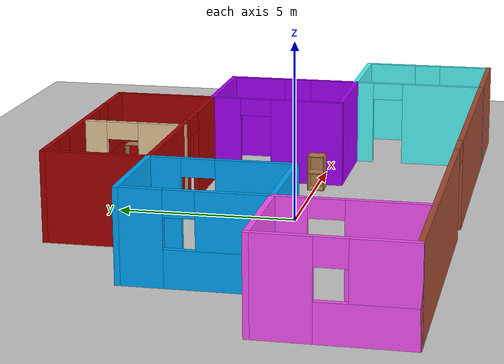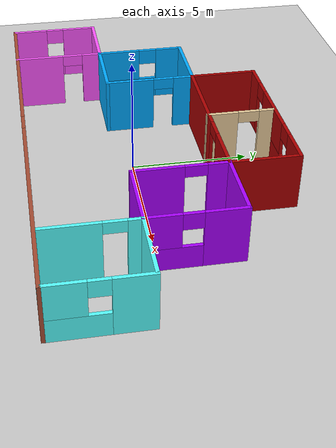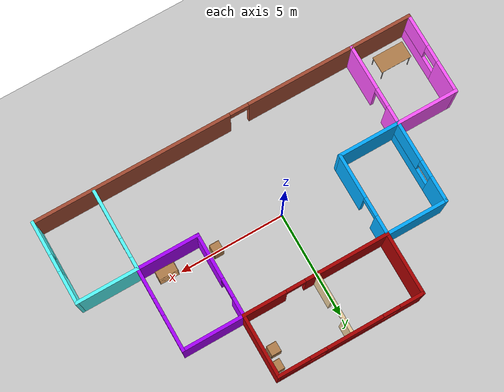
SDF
<sdf version="1.6">
 <world name="default">
  <light name="sun" type="directional">
   <pose>0 0 10 0 -0 0</pose>
   <diffuse>0.8 0.8 0.8 1</diffuse>
   <specular>0.2 0.2 0.2 1</specular>
   <attenuation>
    <range>1000</range>
    <constant>0.9</constant>
    <linear>0.01</linear>
    <quadratic>0.001</quadratic>
   </attenuation>
   <direction>-0.5 0.1 -0.9</direction>
  </light>
  <model name="ground_plane">
   <static>1</static>
   <link name="link">
    <collision name="collision">
     <geometry><plane><normal>0 0 1</normal><size>100 100</size></plane></geometry>
     <surface><friction><ode><mu>100</mu><mu2>50</mu2></ode></friction></surface>
    </collision>
    <visual name="visual">
     <cast_shadows>0</cast_shadows>
     <geometry><plane><normal>0 0 1</normal><size>100 100</size></plane></geometry>
     <material>
      <script><uri>file://media/materials/scripts/gazebo.material</uri><name>Gazebo/Grey</name></script>
     </material>
    </visual>
   </link>
  </model>
  <gravity>0 0 -9.8</gravity>
  <magnetic_field>6e-06 2.3e-05 -4.2e-05</magnetic_field>
  <atmosphere type="adiabatic"/>
  <physics name="default_physics" default="0" type="ode">
   <max_step_size>0.001</max_step_size>
   <real_time_factor>1</real_time_factor>
   <real_time_update_rate>1000</real_time_update_rate>
  </physics>
  <scene><ambient>0.4 0.4 0.4 1</ambient><background>0.7 0.7 0.7 1</background><shadows>1</shadows></scene>
  <audio><device>default</device></audio>
  <spherical_coordinates>
   <surface_model>EARTH_WGS84</surface_model>
   <latitude_deg>0</latitude_deg>
   <longitude_deg>0</longitude_deg>
   <elevation>0</elevation>
   <heading_deg>0</heading_deg>
  </spherical_coordinates>
  <model name="myworld">
   <pose>0.312339 0.78829 0 0 -0 0</pose>
   <link name="Wall_0">
    <pose>0 5.27494 0 0 0 -4e-05</pose>
    <visual name="Wall_0_Visual_0">
     <pose>-2.9108 0 1.25 0 -0 0</pose>
     <geometry><box><size>1.1784 0.15 2.5</size></box></geometry>
     <material>
      <script><uri>file://media/materials/scripts/gazebo.material</uri><name>Gazebo/Grey</name></script>
      <ambient>0.666667 0 0 1</ambient>
     </material>
     <meta><layer>0</layer></meta>
    </visual>
    <collision name="Wall_0_Collision_0">
     <geometry><box><size>1.1784 0.15 2.5</size></box></geometry>
     <pose>-2.9108 0 1.25 0 -0 0</pose>
    </collision>
    <visual name="Wall_0_Visual_1">
     <pose>0.5892 0 0.5 0 -0 0</pose>
     <geometry><box><size>5.8216 0.15 1</size></box></geometry>
     <material>
      <script><uri>file://media/materials/scripts/gazebo.material</uri><name>Gazebo/Grey</name></script>
      <ambient>0.666667 0 0 1</ambient>
     </material>
     <meta><layer>0</layer></meta>
    </visual>
    <collision name="Wall_0_Collision_1">
     <geometry><box><size>5.8216 0.15 1</size></box></geometry>
     <pose>0.5892 0 0.5 0 -0 0</pose>
    </collision>
    <visual name="Wall_0_Visual_2">
     <pose>-0.189125 0 1.75 0 -0 0</pose>
     <geometry><box><size>2.66495 0.15 1.5</size></box></geometry>
     <material>
      <script><uri>file://media/materials/scripts/gazebo.material</uri><name>Gazebo/Grey</name></script>
      <ambient>0.666667 0 0 1</ambient>
     </material>
     <meta><layer>0</layer></meta>
    </visual>
    <collision name="Wall_0_Collision_2">
     <geometry><box><size>2.66495 0.15 1.5</size></box></geometry>
     <pose>-0.189125 0 1.75 0 -0 0</pose>
    </collision>
    <visual name="Wall_0_Visual_3">
     <pose>2.72167 0 1.75 0 -0 0</pose>
     <geometry><box><size>1.55665 0.15 1.5</size></box></geometry>
     <material>
      <script><uri>file://media/materials/scripts/gazebo.material</uri><name>Gazebo/Grey</name></script>
      <ambient>0.666667 0 0 1</ambient>
     </material>
     <meta><layer>0</layer></meta>
    </visual>
    <collision name="Wall_0_Collision_3">
     <geometry><box><size>1.55665 0.15 1.5</size></box></geometry>
     <pose>2.72167 0 1.75 0 -0 0</pose>
    </collision>
    <visual name="Wall_0_Visual_4">
     <pose>-1.9216 0 2.15 0 -0 0</pose>
     <geometry><box><size>0.8 0.15 0.7</size></box></geometry>
     <material>
      <script><uri>file://media/materials/scripts/gazebo.material</uri><name>Gazebo/Grey</name></script>
      <ambient>0.666667 0 0 1</ambient>
     </material>
     <meta><layer>0</layer></meta>
    </visual>
    <collision name="Wall_0_Collision_4">
     <geometry><box><size>0.8 0.15 0.7</size></box></geometry>
     <pose>-1.9216 0 2.15 0 -0 0</pose>
    </collision>
    <visual name="Wall_0_Visual_5">
     <pose>1.54335 0 2.15 0 -0 0</pose>
     <geometry><box><size>0.8 0.15 0.7</size></box></geometry>
     <material>
      <script><uri>file://media/materials/scripts/gazebo.material</uri><name>Gazebo/Grey</name></script>
      <ambient>0.666667 0 0 1</ambient>
     </material>
     <meta><layer>0</layer></meta>
    </visual>
    <collision name="Wall_0_Collision_5">
     <geometry><box><size>0.8 0.15 0.7</size></box></geometry>
     <pose>1.54335 0 2.15 0 -0 0</pose>
    </collision>
   </link>
   <link name="Wall_11">
    <collision name="Wall_11_Collision">
     <geometry><box><size>3 0.15 2.5</size></box></geometry>
     <pose>0 0 1.25 0 -0 0</pose>
    </collision>
    <visual name="Wall_11_Visual">
     <pose>0 0 1.25 0 -0 0</pose>
     <geometry><box><size>3 0.15 2.5</size></box></geometry>
     <material>
      <script><uri>file://media/materials/scripts/gazebo.material</uri><name>Gazebo/Grey</name></script>
      <ambient>0.666667 0 0 1</ambient>
     </material>
     <meta><layer>0</layer></meta>
    </visual>
    <pose>-3.425 3.85019 0 0 0 -1.5708</pose>
   </link>
   <link name="Wall_12">
    <collision name="Wall_12_Collision">
     <geometry><box><size>3 0.15 2.5</size></box></geometry>
     <pose>0 0 1.25 0 -0 0</pose>
    </collision>
    <visual name="Wall_12_Visual">
     <pose>0 0 1.25 0 -0 0</pose>
     <geometry><box><size>3 0.15 2.5</size></box></geometry>
     <material>
      <script><uri>file://media/materials/scripts/gazebo.material</uri><name>Gazebo/Grey</name></script>
      <ambient>0 0.666667 1 1</ambient>
     </material>
     <meta><layer>0</layer></meta>
    </visual>
    <pose>-4.85 2.42531 0 0 -0 3.14159</pose>
   </link>
   <link name="Wall_13">
    <pose>-6.275 0.50031 0 0 0 -1.5708</pose>
    <visual name="Wall_13_Visual_0">
     <pose>-1.37784 0 1.25 0 -0 0</pose>
     <geometry><box><size>1.24431 0.15 2.5</size></box></geometry>
     <material>
      <script><uri>file://media/materials/scripts/gazebo.material</uri><name>Gazebo/Grey</name></script>
      <ambient>0 0.666667 1 1</ambient>
     </material>
     <meta><layer>0</layer></meta>
    </visual>
    <collision name="Wall_13_Collision_0">
     <geometry><box><size>1.24431 0.15 2.5</size></box></geometry>
     <pose>-1.37784 0 1.25 0 -0 0</pose>
    </collision>
    <visual name="Wall_13_Visual_1">
     <pose>0.622157 0 0.5 0 -0 0</pose>
     <geometry><box><size>2.75569 0.15 1</size></box></geometry>
     <material>
      <script><uri>file://media/materials/scripts/gazebo.material</uri><name>Gazebo/Grey</name></script>
      <ambient>0 0.666667 1 1</ambient>
     </material>
     <meta><layer>0</layer></meta>
    </visual>
    <collision name="Wall_13_Collision_1">
     <geometry><box><size>2.75569 0.15 1</size></box></geometry>
     <pose>0.622157 0 0.5 0 -0 0</pose>
    </collision>
    <visual name="Wall_13_Visual_2">
     <pose>1.02216 0 1.75 0 -0 0</pose>
     <geometry><box><size>1.95569 0.15 1.5</size></box></geometry>
     <material>
      <script><uri>file://media/materials/scripts/gazebo.material</uri><name>Gazebo/Grey</name></script>
      <ambient>0 0.666667 1 1</ambient>
     </material>
     <meta><layer>0</layer></meta>
    </visual>
    <collision name="Wall_13_Collision_2">
     <geometry><box><size>1.95569 0.15 1.5</size></box></geometry>
     <pose>1.02216 0 1.75 0 -0 0</pose>
    </collision>
    <visual name="Wall_13_Visual_3">
     <pose>-0.355686 0 2.15 0 -0 0</pose>
     <geometry><box><size>0.8 0.15 0.7</size></box></geometry>
     <material>
      <script><uri>file://media/materials/scripts/gazebo.material</uri><name>Gazebo/Grey</name></script>
      <ambient>0 0.666667 1 1</ambient>
     </material>
     <meta><layer>0</layer></meta>
    </visual>
    <collision name="Wall_13_Collision_3">
     <geometry><box><size>0.8 0.15 0.7</size></box></geometry>
     <pose>-0.355686 0 2.15 0 -0 0</pose>
    </collision>
   </link>
   <link name="Wall_14">
    <collision name="Wall_14_Collision">
     <geometry><box><size>3 0.15 2.5</size></box></geometry>
     <pose>0 0 1.25 0 -0 0</pose>
    </collision>
    <visual name="Wall_14_Visual">
     <pose>0 0 1.25 0 -0 0</pose>
     <geometry><box><size>3 0.15 2.5</size></box></geometry>
     <material>
      <script><uri>file://media/materials/scripts/gazebo.material</uri><name>Gazebo/Grey</name></script>
      <ambient>1 0.333333 1 1</ambient>
     </material>
     <meta><layer>0</layer></meta>
    </visual>
    <pose>-7.7 -1.42469 0 0 -0 3.14159</pose>
   </link>
   <link name="Wall_15">
    <pose>-9.125 -3.34969 0 0 0 -1.5708</pose>
    <visual name="Wall_15_Visual_0">
     <pose>-1.2126 0 1.25 0 -0 0</pose>
     <geometry><box><size>1.57481 0.15 2.5</size></box></geometry>
     <material>
      <script><uri>file://media/materials/scripts/gazebo.material</uri><name>Gazebo/Grey</name></script>
      <ambient>1 0.333333 1 1</ambient>
     </material>
     <meta><layer>0</layer></meta>
    </visual>
    <collision name="Wall_15_Collision_0">
     <geometry><box><size>1.57481 0.15 2.5</size></box></geometry>
     <pose>-1.2126 0 1.25 0 -0 0</pose>
    </collision>
    <visual name="Wall_15_Visual_1">
     <pose>0.787403 0 0.5 0 -0 0</pose>
     <geometry><box><size>2.42519 0.15 1</size></box></geometry>
     <material>
      <script><uri>file://media/materials/scripts/gazebo.material</uri><name>Gazebo/Grey</name></script>
      <ambient>1 0.333333 1 1</ambient>
     </material>
     <meta><layer>0</layer></meta>
    </visual>
    <collision name="Wall_15_Collision_1">
     <geometry><box><size>2.42519 0.15 1</size></box></geometry>
     <pose>0.787403 0 0.5 0 -0 0</pose>
    </collision>
    <visual name="Wall_15_Visual_2">
     <pose>1.1874 0 1.75 0 -0 0</pose>
     <geometry><box><size>1.62519 0.15 1.5</size></box></geometry>
     <material>
      <script><uri>file://media/materials/scripts/gazebo.material</uri><name>Gazebo/Grey</name></script>
      <ambient>1 0.333333 1 1</ambient>
     </material>
     <meta><layer>0</layer></meta>
    </visual>
    <collision name="Wall_15_Collision_2">
     <geometry><box><size>1.62519 0.15 1.5</size></box></geometry>
     <pose>1.1874 0 1.75 0 -0 0</pose>
    </collision>
    <visual name="Wall_15_Visual_3">
     <pose>-0.025194 0 2.15 0 -0 0</pose>
     <geometry><box><size>0.8 0.15 0.7</size></box></geometry>
     <material>
      <script><uri>file://media/materials/scripts/gazebo.material</uri><name>Gazebo/Grey</name></script>
      <ambient>1 0.333333 1 1</ambient>
     </material>
     <meta><layer>0</layer></meta>
    </visual>
    <collision name="Wall_15_Collision_3">
     <geometry><box><size>0.8 0.15 0.7</size></box></geometry>
     <pose>-0.025194 0 2.15 0 -0 0</pose>
    </collision>
   </link>
   <link name="Wall_17">
    <pose>0 -5.27494 0 0 0 -2.8e-05</pose>
    <visual name="Wall_17_Visual_0">
     <pose>-5.1917 0 1.25 0 -0 0</pose>
     <geometry><box><size>8.01661 0.15 2.5</size></box></geometry>
     <material>
      <script><uri>file://media/materials/scripts/gazebo.material</uri><name>Gazebo/Bricks</name></script>
      <ambient>1 1 1 1</ambient>
     </material>
     <meta><layer>0</layer></meta>
    </visual>
    <collision name="Wall_17_Collision_0">
     <geometry><box><size>8.01661 0.15 2.5</size></box></geometry>
     <pose>-5.1917 0 1.25 0 -0 0</pose>
    </collision>
    <visual name="Wall_17_Visual_1">
     <pose>4.4583 0 1.25 0 -0 0</pose>
     <geometry><box><size>9.48339 0.15 2.5</size></box></geometry>
     <material>
      <script><uri>file://media/materials/scripts/gazebo.material</uri><name>Gazebo/Bricks</name></script>
      <ambient>1 1 1 1</ambient>
     </material>
     <meta><layer>0</layer></meta>
    </visual>
    <collision name="Wall_17_Collision_1">
     <geometry><box><size>9.48339 0.15 2.5</size></box></geometry>
     <pose>4.4583 0 1.25 0 -0 0</pose>
    </collision>
    <visual name="Wall_17_Visual_2">
     <pose>-0.733394 0 2.25 0 -0 0</pose>
     <geometry><box><size>0.9 0.15 0.5</size></box></geometry>
     <material>
      <script><uri>file://media/materials/scripts/gazebo.material</uri><name>Gazebo/Bricks</name></script>
      <ambient>1 1 1 1</ambient>
     </material>
     <meta><layer>0</layer></meta>
    </visual>
    <collision name="Wall_17_Collision_2">
     <geometry><box><size>0.9 0.15 0.5</size></box></geometry>
     <pose>-0.733394 0 2.25 0 -0 0</pose>
    </collision>
   </link>
   <link name="Wall_19">
    <pose>0 2.42506 0 0 0 -7.4e-05</pose>
    <visual name="Wall_19_Visual_0">
     <pose>-1.49428 0 1.25 0 -0 0</pose>
     <geometry><box><size>4.01145 0.15 2.5</size></box></geometry>
     <material>
      <script><uri>file://media/materials/scripts/gazebo.material</uri><name>Gazebo/Grey</name></script>
      <ambient>0.666667 0 0 1</ambient>
     </material>
     <meta><layer>0</layer></meta>
    </visual>
    <collision name="Wall_19_Collision_0">
     <geometry><box><size>4.01145 0.15 2.5</size></box></geometry>
     <pose>-1.49428 0 1.25 0 -0 0</pose>
    </collision>
    <visual name="Wall_19_Visual_1">
     <pose>2.45573 0 1.25 0 -0 0</pose>
     <geometry><box><size>2.08855 0.15 2.5</size></box></geometry>
     <material>
      <script><uri>file://media/materials/scripts/gazebo.material</uri><name>Gazebo/Grey</name></script>
      <ambient>0.666667 0 0 1</ambient>
     </material>
     <meta><layer>0</layer></meta>
    </visual>
    <collision name="Wall_19_Collision_1">
     <geometry><box><size>2.08855 0.15 2.5</size></box></geometry>
     <pose>2.45573 0 1.25 0 -0 0</pose>
    </collision>
    <visual name="Wall_19_Visual_2">
     <pose>0.96145 0 2.25 0 -0 0</pose>
     <geometry><box><size>0.9 0.15 0.5</size></box></geometry>
     <material>
      <script><uri>file://media/materials/scripts/gazebo.material</uri><name>Gazebo/Grey</name></script>
      <ambient>0.666667 0 0 1</ambient>
     </material>
     <meta><layer>0</layer></meta>
    </visual>
    <collision name="Wall_19_Collision_2">
     <geometry><box><size>0.9 0.15 0.5</size></box></geometry>
     <pose>0.96145 0 2.25 0 -0 0</pose>
    </collision>
   </link>
   <link name="Wall_2">
    <collision name="Wall_2_Collision">
     <geometry><box><size>3 0.15 2.5</size></box></geometry>
     <pose>0 0 1.25 0 -0 0</pose>
    </collision>
    <visual name="Wall_2_Visual">
     <pose>0 0 1.25 0 -0 0</pose>
     <geometry><box><size>3 0.15 2.5</size></box></geometry>
     <material>
      <script><uri>file://media/materials/scripts/gazebo.material</uri><name>Gazebo/Grey</name></script>
      <ambient>0.666667 0 0 1</ambient>
     </material>
     <meta><layer>0</layer></meta>
    </visual>
    <pose>3.425 3.84981 0 0 0 -1.5708</pose>
   </link>
   <link name="Wall_20">
    <pose>3.425 0.499806 0 0 0 -1.5708</pose>
    <visual name="Wall_20_Visual_0">
     <pose>-1.5279 0 1.25 0 -0 0</pose>
     <geometry><box><size>0.944199 0.15 2.5</size></box></geometry>
     <material>
      <script><uri>file://media/materials/scripts/gazebo.material</uri><name>Gazebo/Grey</name></script>
      <ambient>0.666667 0 1 1</ambient>
     </material>
     <meta><layer>0</layer></meta>
    </visual>
    <collision name="Wall_20_Collision_0">
     <geometry><box><size>0.944199 0.15 2.5</size></box></geometry>
     <pose>-1.5279 0 1.25 0 -0 0</pose>
    </collision>
    <visual name="Wall_20_Visual_1">
     <pose>0.9221 0 1.25 0 -0 0</pose>
     <geometry><box><size>2.1558 0.15 2.5</size></box></geometry>
     <material>
      <script><uri>file://media/materials/scripts/gazebo.material</uri><name>Gazebo/Grey</name></script>
      <ambient>0.666667 0 1 1</ambient>
     </material>
     <meta><layer>0</layer></meta>
    </visual>
    <collision name="Wall_20_Collision_1">
     <geometry><box><size>2.1558 0.15 2.5</size></box></geometry>
     <pose>0.9221 0 1.25 0 -0 0</pose>
    </collision>
    <visual name="Wall_20_Visual_2">
     <pose>-0.605801 0 2.25 0 -0 0</pose>
     <geometry><box><size>0.9 0.15 0.5</size></box></geometry>
     <material>
      <script><uri>file://media/materials/scripts/gazebo.material</uri><name>Gazebo/Grey</name></script>
      <ambient>0.666667 0 1 1</ambient>
     </material>
     <meta><layer>0</layer></meta>
    </visual>
    <collision name="Wall_20_Collision_2">
     <geometry><box><size>0.9 0.15 0.5</size></box></geometry>
     <pose>-0.605801 0 2.25 0 -0 0</pose>
    </collision>
   </link>
   <link name="Wall_21">
    <collision name="Wall_21_Collision">
     <geometry><box><size>3 0.15 2.5</size></box></geometry>
     <pose>0 0 1.25 0 -0 0</pose>
    </collision>
    <visual name="Wall_21_Visual">
     <pose>0 0 1.25 0 -0 0</pose>
     <geometry><box><size>3 0.15 2.5</size></box></geometry>
     <material>
      <script><uri>file://media/materials/scripts/gazebo.material</uri><name>Gazebo/Grey</name></script>
      <ambient>0.666667 0 1 1</ambient>
     </material>
     <meta><layer>0</layer></meta>
    </visual>
    <pose>4.85 -1.42519 0 0 -0 0</pose>
   </link>
   <link name="Wall_22">
    <pose>6.275 -3.35019 0 0 0 -1.5708</pose>
    <visual name="Wall_22_Visual_0">
     <pose>-1.68423 0 1.25 0 -0 0</pose>
     <geometry><box><size>0.631539 0.15 2.5</size></box></geometry>
     <material>
      <script><uri>file://media/materials/scripts/gazebo.material</uri><name>Gazebo/Grey</name></script>
      <ambient>0.333333 1 1 1</ambient>
     </material>
     <meta><layer>0</layer></meta>
    </visual>
    <collision name="Wall_22_Collision_0">
     <geometry><box><size>0.631539 0.15 2.5</size></box></geometry>
     <pose>-1.68423 0 1.25 0 -0 0</pose>
    </collision>
    <visual name="Wall_22_Visual_1">
     <pose>0.76577 0 1.25 0 -0 0</pose>
     <geometry><box><size>2.46846 0.15 2.5</size></box></geometry>
     <material>
      <script><uri>file://media/materials/scripts/gazebo.material</uri><name>Gazebo/Grey</name></script>
      <ambient>0.333333 1 1 1</ambient>
     </material>
     <meta><layer>0</layer></meta>
    </visual>
    <collision name="Wall_22_Collision_1">
     <geometry><box><size>2.46846 0.15 2.5</size></box></geometry>
     <pose>0.76577 0 1.25 0 -0 0</pose>
    </collision>
    <visual name="Wall_22_Visual_2">
     <pose>-0.918461 0 2.25 0 -0 0</pose>
     <geometry><box><size>0.9 0.15 0.5</size></box></geometry>
     <material>
      <script><uri>file://media/materials/scripts/gazebo.material</uri><name>Gazebo/Grey</name></script>
      <ambient>0.333333 1 1 1</ambient>
     </material>
     <meta><layer>0</layer></meta>
    </visual>
    <collision name="Wall_22_Collision_2">
     <geometry><box><size>0.9 0.15 0.5</size></box></geometry>
     <pose>-0.918461 0 2.25 0 -0 0</pose>
    </collision>
   </link>
   <link name="Wall_24">
    <pose>-3.425 0.50031 0 0 0 -1.5708</pose>
    <visual name="Wall_24_Visual_0">
     <pose>-1.52791 0 1.25 0 -0 0</pose>
     <geometry><box><size>0.944172 0.15 2.5</size></box></geometry>
     <material>
      <script><uri>file://media/materials/scripts/gazebo.material</uri><name>Gazebo/Grey</name></script>
      <ambient>0 0.666667 1 1</ambient>
     </material>
     <meta><layer>0</layer></meta>
    </visual>
    <collision name="Wall_24_Collision_0">
     <geometry><box><size>0.944172 0.15 2.5</size></box></geometry>
     <pose>-1.52791 0 1.25 0 -0 0</pose>
    </collision>
    <visual name="Wall_24_Visual_1">
     <pose>0.922086 0 1.25 0 -0 0</pose>
     <geometry><box><size>2.15583 0.15 2.5</size></box></geometry>
     <material>
      <script><uri>file://media/materials/scripts/gazebo.material</uri><name>Gazebo/Grey</name></script>
      <ambient>0 0.666667 1 1</ambient>
     </material>
     <meta><layer>0</layer></meta>
    </visual>
    <collision name="Wall_24_Collision_1">
     <geometry><box><size>2.15583 0.15 2.5</size></box></geometry>
     <pose>0.922086 0 1.25 0 -0 0</pose>
    </collision>
    <visual name="Wall_24_Visual_2">
     <pose>-0.605828 0 2.25 0 -0 0</pose>
     <geometry><box><size>0.9 0.15 0.5</size></box></geometry>
     <material>
      <script><uri>file://media/materials/scripts/gazebo.material</uri><name>Gazebo/Grey</name></script>
      <ambient>0 0.666667 1 1</ambient>
     </material>
     <meta><layer>0</layer></meta>
    </visual>
    <collision name="Wall_24_Collision_2">
     <geometry><box><size>0.9 0.15 0.5</size></box></geometry>
     <pose>-0.605828 0 2.25 0 -0 0</pose>
    </collision>
   </link>
   <link name="Wall_25">
    <collision name="Wall_25_Collision">
     <geometry><box><size>3 0.15 2.5</size></box></geometry>
     <pose>0 0 1.25 0 -0 0</pose>
    </collision>
    <visual name="Wall_25_Visual">
     <pose>0 0 1.25 0 -0 0</pose>
     <geometry><box><size>3 0.15 2.5</size></box></geometry>
     <material>
      <script><uri>file://media/materials/scripts/gazebo.material</uri><name>Gazebo/Grey</name></script>
      <ambient>0 0.666667 1 1</ambient>
     </material>
     <meta><layer>0</layer></meta>
    </visual>
    <pose>-4.85 -1.42469 0 0 -0 3.14159</pose>
   </link>
   <link name="Wall_26">
    <pose>-6.275 -3.34969 0 0 0 -1.5708</pose>
    <visual name="Wall_26_Visual_0">
     <pose>-1.54131 0 1.25 0 -0 0</pose>
     <geometry><box><size>0.917384 0.15 2.5</size></box></geometry>
     <material>
      <script><uri>file://media/materials/scripts/gazebo.material</uri><name>Gazebo/Grey</name></script>
      <ambient>1 0.333333 1 1</ambient>
     </material>
     <meta><layer>0</layer></meta>
    </visual>
    <collision name="Wall_26_Collision_0">
     <geometry><box><size>0.917384 0.15 2.5</size></box></geometry>
     <pose>-1.54131 0 1.25 0 -0 0</pose>
    </collision>
    <visual name="Wall_26_Visual_1">
     <pose>0.908692 0 1.25 0 -0 0</pose>
     <geometry><box><size>2.18262 0.15 2.5</size></box></geometry>
     <material>
      <script><uri>file://media/materials/scripts/gazebo.material</uri><name>Gazebo/Grey</name></script>
      <ambient>1 0.333333 1 1</ambient>
     </material>
     <meta><layer>0</layer></meta>
    </visual>
    <collision name="Wall_26_Collision_1">
     <geometry><box><size>2.18262 0.15 2.5</size></box></geometry>
     <pose>0.908692 0 1.25 0 -0 0</pose>
    </collision>
    <visual name="Wall_26_Visual_2">
     <pose>-0.632616 0 2.25 0 -0 0</pose>
     <geometry><box><size>0.9 0.15 0.5</size></box></geometry>
     <material>
      <script><uri>file://media/materials/scripts/gazebo.material</uri><name>Gazebo/Grey</name></script>
      <ambient>1 0.333333 1 1</ambient>
     </material>
     <meta><layer>0</layer></meta>
    </visual>
    <collision name="Wall_26_Collision_2">
     <geometry><box><size>0.9 0.15 0.5</size></box></geometry>
     <pose>-0.632616 0 2.25 0 -0 0</pose>
    </collision>
   </link>
   <link name="Wall_28">
    <pose>-0.0701 3.80536 0 0 0 -1.5708</pose>
    <visual name="Wall_28_Visual_0">
     <pose>-1.13741 0 1.25 0 -0 0</pose>
     <geometry><box><size>0.725177 0.15 2.5</size></box></geometry>
     <material>
      <script><uri>file://media/materials/scripts/gazebo.material</uri><name>Gazebo/Grey</name></script>
      <ambient>0.921569 0.807843 0.615686 1</ambient>
     </material>
     <meta><layer>0</layer></meta>
    </visual>
    <collision name="Wall_28_Collision_0">
     <geometry><box><size>0.725177 0.15 2.5</size></box></geometry>
     <pose>-1.13741 0 1.25 0 -0 0</pose>
    </collision>
    <visual name="Wall_28_Visual_1">
     <pose>0.812588 0 1.25 0 -0 0</pose>
     <geometry><box><size>1.37482 0.15 2.5</size></box></geometry>
     <material>
      <script><uri>file://media/materials/scripts/gazebo.material</uri><name>Gazebo/Grey</name></script>
      <ambient>0.921569 0.807843 0.615686 1</ambient>
     </material>
     <meta><layer>0</layer></meta>
    </visual>
    <collision name="Wall_28_Collision_1">
     <geometry><box><size>1.37482 0.15 2.5</size></box></geometry>
     <pose>0.812588 0 1.25 0 -0 0</pose>
    </collision>
    <visual name="Wall_28_Visual_2">
     <pose>-0.324823 0 2.25 0 -0 0</pose>
     <geometry><box><size>0.9 0.15 0.5</size></box></geometry>
     <material>
      <script><uri>file://media/materials/scripts/gazebo.material</uri><name>Gazebo/Grey</name></script>
      <ambient>0.921569 0.807843 0.615686 1</ambient>
     </material>
     <meta><layer>0</layer></meta>
    </visual>
    <collision name="Wall_28_Collision_2">
     <geometry><box><size>0.9 0.15 0.5</size></box></geometry>
     <pose>-0.324823 0 2.25 0 -0 0</pose>
    </collision>
   </link>
   <link name="Wall_3">
    <collision name="Wall_3_Collision">
     <geometry><box><size>3 0.15 2.5</size></box></geometry>
     <pose>0 0 1.25 0 -0 0</pose>
    </collision>
    <visual name="Wall_3_Visual">
     <pose>0 0 1.25 0 -0 0</pose>
     <geometry><box><size>3 0.15 2.5</size></box></geometry>
     <material>
      <script><uri>file://media/materials/scripts/gazebo.material</uri><name>Gazebo/Grey</name></script>
      <ambient>0.666667 0 1 1</ambient>
     </material>
     <meta><layer>0</layer></meta>
    </visual>
    <pose>4.85 2.42481 0 0 -0 0</pose>
   </link>
   <link name="Wall_4">
    <pose>6.275 0.499806 0 0 0 -1.5708</pose>
    <visual name="Wall_4_Visual_0">
     <pose>-1.14559 0 1.25 0 -0 0</pose>
     <geometry><box><size>1.70881 0.15 2.5</size></box></geometry>
     <material>
      <script><uri>file://media/materials/scripts/gazebo.material</uri><name>Gazebo/Grey</name></script>
      <ambient>0.666667 0 1 1</ambient>
     </material>
     <meta><layer>0</layer></meta>
    </visual>
    <collision name="Wall_4_Collision_0">
     <geometry><box><size>1.70881 0.15 2.5</size></box></geometry>
     <pose>-1.14559 0 1.25 0 -0 0</pose>
    </collision>
    <visual name="Wall_4_Visual_1">
     <pose>0.854407 0 0.5 0 -0 0</pose>
     <geometry><box><size>2.29119 0.15 1</size></box></geometry>
     <material>
      <script><uri>file://media/materials/scripts/gazebo.material</uri><name>Gazebo/Grey</name></script>
      <ambient>0.666667 0 1 1</ambient>
     </material>
     <meta><layer>0</layer></meta>
    </visual>
    <collision name="Wall_4_Collision_1">
     <geometry><box><size>2.29119 0.15 1</size></box></geometry>
     <pose>0.854407 0 0.5 0 -0 0</pose>
    </collision>
    <visual name="Wall_4_Visual_2">
     <pose>1.25441 0 1.75 0 -0 0</pose>
     <geometry><box><size>1.49119 0.15 1.5</size></box></geometry>
     <material>
      <script><uri>file://media/materials/scripts/gazebo.material</uri><name>Gazebo/Grey</name></script>
      <ambient>0.666667 0 1 1</ambient>
     </material>
     <meta><layer>0</layer></meta>
    </visual>
    <collision name="Wall_4_Collision_2">
     <geometry><box><size>1.49119 0.15 1.5</size></box></geometry>
     <pose>1.25441 0 1.75 0 -0 0</pose>
    </collision>
    <visual name="Wall_4_Visual_3">
     <pose>0.108813 0 2.15 0 -0 0</pose>
     <geometry><box><size>0.8 0.15 0.7</size></box></geometry>
     <material>
      <script><uri>file://media/materials/scripts/gazebo.material</uri><name>Gazebo/Grey</name></script>
      <ambient>0.666667 0 1 1</ambient>
     </material>
     <meta><layer>0</layer></meta>
    </visual>
    <collision name="Wall_4_Collision_3">
     <geometry><box><size>0.8 0.15 0.7</size></box></geometry>
     <pose>0.108813 0 2.15 0 -0 0</pose>
    </collision>
   </link>
   <link name="Wall_7">
    <collision name="Wall_7_Collision">
     <geometry><box><size>3 0.15 2.5</size></box></geometry>
     <pose>0 0 1.25 0 -0 0</pose>
    </collision>
    <visual name="Wall_7_Visual">
     <pose>0 0 1.25 0 -0 0</pose>
     <geometry><box><size>3 0.15 2.5</size></box></geometry>
     <material>
      <script><uri>file://media/materials/scripts/gazebo.material</uri><name>Gazebo/Grey</name></script>
      <ambient>0.333333 1 1 1</ambient>
     </material>
     <meta><layer>0</layer></meta>
    </visual>
    <pose>7.7 -1.42519 0 0 -0 0</pose>
   </link>
   <link name="Wall_9">
    <pose>9.125 -3.35019 0 0 0 -1.5708</pose>
    <visual name="Wall_9_Visual_0">
     <pose>-1.2126 0 1.25 0 -0 0</pose>
     <geometry><box><size>1.57481 0.15 2.5</size></box></geometry>
     <material>
      <script><uri>file://media/materials/scripts/gazebo.material</uri><name>Gazebo/Grey</name></script>
      <ambient>0.333333 1 1 1</ambient>
     </material>
     <meta><layer>0</layer></meta>
    </visual>
    <collision name="Wall_9_Collision_0">
     <geometry><box><size>1.57481 0.15 2.5</size></box></geometry>
     <pose>-1.2126 0 1.25 0 -0 0</pose>
    </collision>
    <visual name="Wall_9_Visual_1">
     <pose>0.787403 0 0.5 0 -0 0</pose>
     <geometry><box><size>2.42519 0.15 1</size></box></geometry>
     <material>
      <script><uri>file://media/materials/scripts/gazebo.material</uri><name>Gazebo/Grey</name></script>
      <ambient>0.333333 1 1 1</ambient>
     </material>
     <meta><layer>0</layer></meta>
    </visual>
    <collision name="Wall_9_Collision_1">
     <geometry><box><size>2.42519 0.15 1</size></box></geometry>
     <pose>0.787403 0 0.5 0 -0 0</pose>
    </collision>
    <visual name="Wall_9_Visual_2">
     <pose>1.1874 0 1.75 0 -0 0</pose>
     <geometry><box><size>1.62519 0.15 1.5</size></box></geometry>
     <material>
      <script><uri>file://media/materials/scripts/gazebo.material</uri><name>Gazebo/Grey</name></script>
      <ambient>0.333333 1 1 1</ambient>
     </material>
     <meta><layer>0</layer></meta>
    </visual>
    <collision name="Wall_9_Collision_2">
     <geometry><box><size>1.62519 0.15 1.5</size></box></geometry>
     <pose>1.1874 0 1.75 0 -0 0</pose>
    </collision>
    <visual name="Wall_9_Visual_3">
     <pose>-0.025193 0 2.15 0 -0 0</pose>
     <geometry><box><size>0.8 0.15 0.7</size></box></geometry>
     <material>
      <script><uri>file://media/materials/scripts/gazebo.material</uri><name>Gazebo/Grey</name></script>
      <ambient>0.333333 1 1 1</ambient>
     </material>
     <meta><layer>0</layer></meta>
    </visual>
    <collision name="Wall_9_Collision_3">
     <geometry><box><size>0.8 0.15 0.7</size></box></geometry>
     <pose>-0.025193 0 2.15 0 -0 0</pose>
    </collision>
   </link>
   <static>1</static>
  </model>
  <model name="bookshelf">
   <static>1</static>
   <link name="link">
    <inertial><mass>1</mass></inertial>
    <collision name="back">
     <pose>0 0.005 0.6 0 -0 0</pose>
     <geometry><box><size>0.9 0.01 1.2</size></box></geometry>
    </collision>
    <visual name="visual1">
     <pose>0 0.005 0.6 0 -0 0</pose>
     <geometry><box><size>0.9 0.01 1.2</size></box></geometry>
     <material>
      <script><uri>file://media/materials/scripts/gazebo.material</uri><name>Gazebo/Wood</name></script>
     </material>
    </visual>
    <collision name="left_side">
     <pose>0.45 -0.195 0.6 0 -0 0</pose>
     <geometry><box><size>0.02 0.4 1.2</size></box></geometry>
    </collision>
    <visual name="visual2">
     <pose>0.45 -0.195 0.6 0 -0 0</pose>
     <geometry><box><size>0.02 0.4 1.2</size></box></geometry>
     <material>
      <script><uri>file://media/materials/scripts/gazebo.material</uri><name>Gazebo/Wood</name></script>
     </material>
    </visual>
    <collision name="right_side">
     <pose>-0.45 -0.195 0.6 0 -0 0</pose>
     <geometry><box><size>0.02 0.4 1.2</size></box></geometry>
    </collision>
    <visual name="visual3">
     <pose>-0.45 -0.195 0.6 0 -0 0</pose>
     <geometry><box><size>0.02 0.4 1.2</size></box></geometry>
     <material>
      <script><uri>file://media/materials/scripts/gazebo.material</uri><name>Gazebo/Wood</name></script>
     </material>
    </visual>
    <collision name="bottom">
     <pose>0 -0.195 0.03 0 -0 0</pose>
     <geometry><box><size>0.88 0.4 0.06</size></box></geometry>
    </collision>
    <visual name="visual4">
     <pose>0 -0.195 0.03 0 -0 0</pose>
     <geometry><box><size>0.88 0.4 0.06</size></box></geometry>
     <material>
      <script><uri>file://media/materials/scripts/gazebo.material</uri><name>Gazebo/Wood</name></script>
     </material>
    </visual>
    <collision name="top">
     <pose>0 -0.195 1.19 0 -0 0</pose>
     <geometry><box><size>0.88 0.4 0.02</size></box></geometry>
    </collision>
    <visual name="visual5">
     <pose>0 -0.195 1.19 0 -0 0</pose>
     <geometry><box><size>0.88 0.4 0.02</size></box></geometry>
     <material>
      <script><uri>file://media/materials/scripts/gazebo.material</uri><name>Gazebo/Wood</name></script>
     </material>
    </visual>
    <collision name="low_shelf">
     <pose>0 -0.195 0.43 0 -0 0</pose>
     <geometry><box><size>0.88 0.4 0.02</size></box></geometry>
    </collision>
    <visual name="visual6">
     <pose>0 -0.195 0.43 0 -0 0</pose>
     <geometry><box><size>0.88 0.4 0.02</size></box></geometry>
     <material>
      <script><uri>file://media/materials/scripts/gazebo.material</uri><name>Gazebo/Wood</name></script>
     </material>
    </visual>
    <collision name="high_shelf">
     <pose>0 -0.195 0.8 0 -0 0</pose>
     <geometry><box><size>0.88 0.4 0.02</size></box></geometry>
    </collision>
    <visual name="visual7">
     <pose>0 -0.195 0.8 0 -0 0</pose>
     <geometry><box><size>0.88 0.4 0.02</size></box></geometry>
     <material>
      <script><uri>file://media/materials/scripts/gazebo.material</uri><name>Gazebo/Wood</name></script>
     </material>
    </visual>
   </link>
   <pose>5.56388 -0.368507 0 0 -0 3.13131</pose>
  </model>
  <model name="cabinet">
   <static>1</static>
   <link name="cabinet_bottom_plate">
    <inertial>
     <pose>0 0 -1 0 -0 0</pose>
     <inertia><ixx>2.05</ixx><ixy>0</ixy><ixz>0</ixz><iyy>2.05</iyy><iyz>0</iyz><izz>2.05</izz></inertia>
     <mass>25</mass>
    </inertial>
    <collision name="cabinet_bottom_plate_geom">
     <pose>0 0 0.01 0 -0 0</pose>
     <geometry><box><size>0.45 0.45 0.02</size></box></geometry>
    </collision>
    <visual name="cabinet_bottom_plate_geom_visual">
     <pose>0 0 0.01 0 -0 0</pose>
     <geometry><box><size>0.45 0.45 0.02</size></box></geometry>
     <material>
      <script><uri>file://media/materials/scripts/gazebo.material</uri><name>Gazebo/Wood</name></script>
     </material>
    </visual>
    <collision name="cabinet_bottom_plate_geom_cabinet_back_plate">
     <pose>0.235 0 0.51 0 -0 0</pose>
     <geometry><box><size>0.02 0.45 1.02</size></box></geometry>
    </collision>
    <visual name="cabinet_bottom_plate_geom_cabinet_back_plate_visual">
     <pose>0.235 0 0.51 0 -0 0</pose>
     <geometry><box><size>0.02 0.45 1.02</size></box></geometry>
     <material>
      <script><uri>file://media/materials/scripts/gazebo.material</uri><name>Gazebo/Wood</name></script>
     </material>
    </visual>
    <collision name="cabinet_bottom_plate_geom_cabinet_left_plate">
     <pose>0 0.235 0.51 0 -0 0</pose>
     <geometry><box><size>0.45 0.02 1.02</size></box></geometry>
    </collision>
    <visual name="cabinet_bottom_plate_geom_cabinet_left_plate_visual">
     <pose>0 0.235 0.51 0 -0 0</pose>
     <geometry><box><size>0.45 0.02 1.02</size></box></geometry>
     <material>
      <script><uri>file://media/materials/scripts/gazebo.material</uri><name>Gazebo/Wood</name></script>
     </material>
    </visual>
    <collision name="cabinet_bottom_plate_geom_cabinet_middle_plate">
     <pose>0 0 0.51 0 -0 0</pose>
     <geometry><box><size>0.45 0.45 0.02</size></box></geometry>
    </collision>
    <visual name="cabinet_bottom_plate_geom_cabinet_middle_plate_visual">
     <pose>0 0 0.51 0 -0 0</pose>
     <geometry><box><size>0.45 0.45 0.02</size></box></geometry>
     <material>
      <script><uri>file://media/materials/scripts/gazebo.material</uri><name>Gazebo/Wood</name></script>
     </material>
    </visual>
    <collision name="cabinet_bottom_plate_geom_cabinet_right_plate">
     <pose>0 -0.235 0.51 0 -0 0</pose>
     <geometry><box><size>0.45 0.02 1.02</size></box></geometry>
    </collision>
    <visual name="cabinet_bottom_plate_geom_cabinet_right_plate_visual">
     <pose>0 -0.235 0.51 0 -0 0</pose>
     <geometry><box><size>0.45 0.02 1.02</size></box></geometry>
     <material>
      <script><uri>file://media/materials/scripts/gazebo.material</uri><name>Gazebo/Wood</name></script>
     </material>
    </visual>
    <collision name="cabinet_bottom_plate_geom_cabinet_top_plate">
     <pose>0 0 1.01 0 -0 0</pose>
     <geometry><box><size>0.45 0.45 0.02</size></box></geometry>
    </collision>
    <visual name="cabinet_bottom_plate_geom_cabinet_top_plate_visual">
     <pose>0 0 1.01 0 -0 0</pose>
     <geometry><box><size>0.45 0.45 0.02</size></box></geometry>
     <material>
      <script><uri>file://media/materials/scripts/gazebo.material</uri><name>Gazebo/Wood</name></script>
     </material>
    </visual>
   </link>
   <pose>3.47461 5.5755 0 0 -0 0</pose>
  </model>
  <model name="cabinet_0">
   <static>1</static>
   <link name="cabinet_bottom_plate">
    <inertial>
     <pose>0 0 -1 0 -0 0</pose>
     <inertia><ixx>2.05</ixx><ixy>0</ixy><ixz>0</ixz><iyy>2.05</iyy><iyz>0</iyz><izz>2.05</izz></inertia>
     <mass>25</mass>
    </inertial>
    <collision name="cabinet_bottom_plate_geom">
     <pose>0 0 0.01 0 -0 0</pose>
     <geometry><box><size>0.45 0.45 0.02</size></box></geometry>
    </collision>
    <visual name="cabinet_bottom_plate_geom_visual">
     <pose>0 0 0.01 0 -0 0</pose>
     <geometry><box><size>0.45 0.45 0.02</size></box></geometry>
     <material>
      <script><uri>file://media/materials/scripts/gazebo.material</uri><name>Gazebo/Wood</name></script>
     </material>
    </visual>
    <collision name="cabinet_bottom_plate_geom_cabinet_back_plate">
     <pose>0.235 0 0.51 0 -0 0</pose>
     <geometry><box><size>0.02 0.45 1.02</size></box></geometry>
    </collision>
    <visual name="cabinet_bottom_plate_geom_cabinet_back_plate_visual">
     <pose>0.235 0 0.51 0 -0 0</pose>
     <geometry><box><size>0.02 0.45 1.02</size></box></geometry>
     <material>
      <script><uri>file://media/materials/scripts/gazebo.material</uri><name>Gazebo/Wood</name></script>
     </material>
    </visual>
    <collision name="cabinet_bottom_plate_geom_cabinet_left_plate">
     <pose>0 0.235 0.51 0 -0 0</pose>
     <geometry><box><size>0.45 0.02 1.02</size></box></geometry>
    </collision>
    <visual name="cabinet_bottom_plate_geom_cabinet_left_plate_visual">
     <pose>0 0.235 0.51 0 -0 0</pose>
     <geometry><box><size>0.45 0.02 1.02</size></box></geometry>
     <material>
      <script><uri>file://media/materials/scripts/gazebo.material</uri><name>Gazebo/Wood</name></script>
     </material>
    </visual>
    <collision name="cabinet_bottom_plate_geom_cabinet_middle_plate">
     <pose>0 0 0.51 0 -0 0</pose>
     <geometry><box><size>0.45 0.45 0.02</size></box></geometry>
    </collision>
    <visual name="cabinet_bottom_plate_geom_cabinet_middle_plate_visual">
     <pose>0 0 0.51 0 -0 0</pose>
     <geometry><box><size>0.45 0.45 0.02</size></box></geometry>
     <material>
      <script><uri>file://media/materials/scripts/gazebo.material</uri><name>Gazebo/Wood</name></script>
     </material>
    </visual>
    <collision name="cabinet_bottom_plate_geom_cabinet_right_plate">
     <pose>0 -0.235 0.51 0 -0 0</pose>
     <geometry><box><size>0.45 0.02 1.02</size></box></geometry>
    </collision>
    <visual name="cabinet_bottom_plate_geom_cabinet_right_plate_visual">
     <pose>0 -0.235 0.51 0 -0 0</pose>
     <geometry><box><size>0.45 0.02 1.02</size></box></geometry>
     <material>
      <script><uri>file://media/materials/scripts/gazebo.material</uri><name>Gazebo/Wood</name></script>
     </material>
    </visual>
    <collision name="cabinet_bottom_plate_geom_cabinet_top_plate">
     <pose>0 0 1.01 0 -0 0</pose>
     <geometry><box><size>0.45 0.45 0.02</size></box></geometry>
    </collision>
    <visual name="cabinet_bottom_plate_geom_cabinet_top_plate_visual">
     <pose>0 0 1.01 0 -0 0</pose>
     <geometry><box><size>0.45 0.45 0.02</size></box></geometry>
     <material>
      <script><uri>file://media/materials/scripts/gazebo.material</uri><name>Gazebo/Wood</name></script>
     </material>
    </visual>
   </link>
   <pose>3.22546 -0.02658 0 0 -0 0</pose>
  </model>
  <model name="table">
   <static>1</static>
   <link name="link">
    <collision name="surface">
     <pose>0 0 1 0 -0 0</pose>
     <geometry><box><size>1.5 0.8 0.03</size></box></geometry>
     <surface><friction><ode><mu>0.6</mu><mu2>0.6</mu2></ode></friction></surface>
    </collision>
    <visual name="visual1">
     <pose>0 0 1 0 -0 0</pose>
     <geometry><box><size>1.5 0.8 0.03</size></box></geometry>
     <material>
      <script><uri>file://media/materials/scripts/gazebo.material</uri><name>Gazebo/Wood</name></script>
     </material>
    </visual>
    <collision name="front_left_leg">
     <pose>0.68 0.38 0.5 0 -0 0</pose>
     <geometry><cylinder><radius>0.02</radius><length>1</length></cylinder></geometry>
    </collision>
    <visual name="front_left_leg">
     <pose>0.68 0.38 0.5 0 -0 0</pose>
     <geometry><cylinder><radius>0.02</radius><length>1</length></cylinder></geometry>
     <material>
      <script><uri>file://media/materials/scripts/gazebo.material</uri><name>Gazebo/Grey</name></script>
     </material>
    </visual>
    <collision name="front_right_leg">
     <pose>0.68 -0.38 0.5 0 -0 0</pose>
     <geometry><cylinder><radius>0.02</radius><length>1</length></cylinder></geometry>
    </collision>
    <visual name="front_right_leg">
     <pose>0.68 -0.38 0.5 0 -0 0</pose>
     <geometry><cylinder><radius>0.02</radius><length>1</length></cylinder></geometry>
     <material>
      <script><uri>file://media/materials/scripts/gazebo.material</uri><name>Gazebo/Grey</name></script>
     </material>
    </visual>
    <collision name="back_right_leg">
     <pose>-0.68 -0.38 0.5 0 -0 0</pose>
     <geometry><cylinder><radius>0.02</radius><length>1</length></cylinder></geometry>
    </collision>
    <visual name="back_right_leg">
     <pose>-0.68 -0.38 0.5 0 -0 0</pose>
     <geometry><cylinder><radius>0.02</radius><length>1</length></cylinder></geometry>
     <material>
      <script><uri>file://media/materials/scripts/gazebo.material</uri><name>Gazebo/Grey</name></script>
     </material>
    </visual>
    <collision name="back_left_leg">
     <pose>-0.68 0.38 0.5 0 -0 0</pose>
     <geometry><cylinder><radius>0.02</radius><length>1</length></cylinder></geometry>
    </collision>
    <visual name="back_left_leg">
     <pose>-0.68 0.38 0.5 0 -0 0</pose>
     <geometry><cylinder><radius>0.02</radius><length>1</length></cylinder></geometry>
     <material>
      <script><uri>file://media/materials/scripts/gazebo.material</uri><name>Gazebo/Grey</name></script>
     </material>
    </visual>
   </link>
   <pose>-7.61243 -3.58646 0 0 -0 0</pose>
  </model>
  <model name="cabinet_1">
   <static>1</static>
   <link name="cabinet_bottom_plate">
    <inertial>
     <pose>0 0 -1 0 -0 0</pose>
     <inertia><ixx>2.05</ixx><ixy>0</ixy><ixz>0</ixz><iyy>2.05</iyy><iyz>0</iyz><izz>2.05</izz></inertia>
     <mass>25</mass>
    </inertial>
    <collision name="cabinet_bottom_plate_geom">
     <pose>0 0 0.01 0 -0 0</pose>
     <geometry><box><size>0.45 0.45 0.02</size></box></geometry>
    </collision>
    <visual name="cabinet_bottom_plate_geom_visual">
     <pose>0 0 0.01 0 -0 0</pose>
     <geometry><box><size>0.45 0.45 0.02</size></box></geometry>
     <material>
      <script><uri>file://media/materials/scripts/gazebo.material</uri><name>Gazebo/Wood</name></script>
     </material>
    </visual>
    <collision name="cabinet_bottom_plate_geom_cabinet_back_plate">
     <pose>0.235 0 0.51 0 -0 0</pose>
     <geometry><box><size>0.02 0.45 1.02</size></box></geometry>
    </collision>
    <visual name="cabinet_bottom_plate_geom_cabinet_back_plate_visual">
     <pose>0.235 0 0.51 0 -0 0</pose>
     <geometry><box><size>0.02 0.45 1.02</size></box></geometry>
     <material>
      <script><uri>file://media/materials/scripts/gazebo.material</uri><name>Gazebo/Wood</name></script>
     </material>
    </visual>
    <collision name="cabinet_bottom_plate_geom_cabinet_left_plate">
     <pose>0 0.235 0.51 0 -0 0</pose>
     <geometry><box><size>0.45 0.02 1.02</size></box></geometry>
    </collision>
    <visual name="cabinet_bottom_plate_geom_cabinet_left_plate_visual">
     <pose>0 0.235 0.51 0 -0 0</pose>
     <geometry><box><size>0.45 0.02 1.02</size></box></geometry>
     <material>
      <script><uri>file://media/materials/scripts/gazebo.material</uri><name>Gazebo/Wood</name></script>
     </material>
    </visual>
    <collision name="cabinet_bottom_plate_geom_cabinet_middle_plate">
     <pose>0 0 0.51 0 -0 0</pose>
     <geometry><box><size>0.45 0.45 0.02</size></box></geometry>
    </collision>
    <visual name="cabinet_bottom_plate_geom_cabinet_middle_plate_visual">
     <pose>0 0 0.51 0 -0 0</pose>
     <geometry><box><size>0.45 0.45 0.02</size></box></geometry>
     <material>
      <script><uri>file://media/materials/scripts/gazebo.material</uri><name>Gazebo/Wood</name></script>
     </material>
    </visual>
    <collision name="cabinet_bottom_plate_geom_cabinet_right_plate">
     <pose>0 -0.235 0.51 0 -0 0</pose>
     <geometry><box><size>0.45 0.02 1.02</size></box></geometry>
    </collision>
    <visual name="cabinet_bottom_plate_geom_cabinet_right_plate_visual">
     <pose>0 -0.235 0.51 0 -0 0</pose>
     <geometry><box><size>0.45 0.02 1.02</size></box></geometry>
     <material>
      <script><uri>file://media/materials/scripts/gazebo.material</uri><name>Gazebo/Wood</name></script>
     </material>
    </visual>
    <collision name="cabinet_bottom_plate_geom_cabinet_top_plate">
     <pose>0 0 1.01 0 -0 0</pose>
     <geometry><box><size>0.45 0.45 0.02</size></box></geometry>
    </collision>
    <visual name="cabinet_bottom_plate_geom_cabinet_top_plate_visual">
     <pose>0 0 1.01 0 -0 0</pose>
     <geometry><box><size>0.45 0.45 0.02</size></box></geometry>
     <material>
      <script><uri>file://media/materials/scripts/gazebo.material</uri><name>Gazebo/Wood</name></script>
     </material>
    </visual>
   </link>
   <pose>3.28394 4.9291 0.528555 0 -0 0</pose>
  </model>
 </world>
</sdf>
